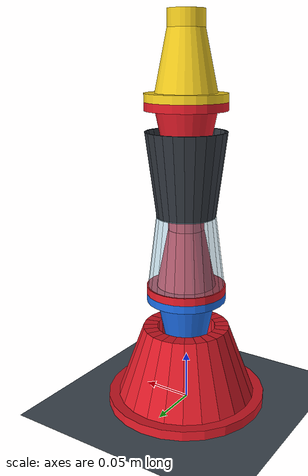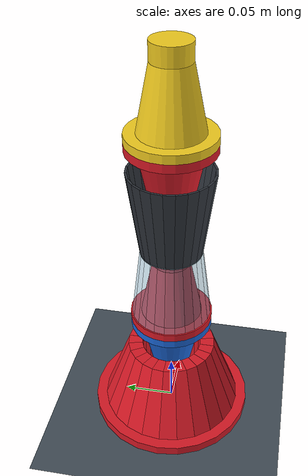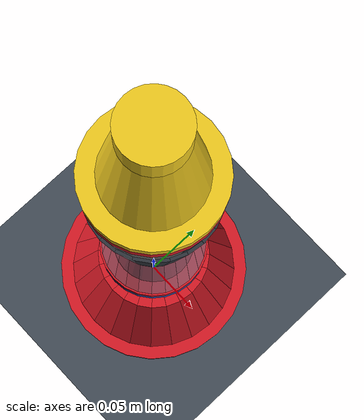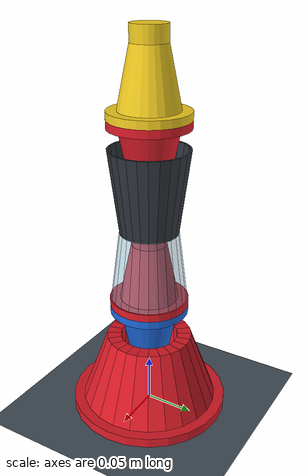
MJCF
<mujoco model="override_contact_fixture"><compiler angle="radian" /><option timestep=".002" gravity="0 0 -9.81" integrator="implicitfast" cone="elliptic" iterations="80" /><default><geom friction=".65 .002 .0001" solref=".01 1" /></default><visual><global offwidth="1200" offheight="900" /><headlight ambient=".5 .5 .5" diffuse=".7 .7 .7" /></visual><asset><mesh name="goal_wall_0" vertex="0.07125 0.0 0.01 0.06882221512309611 0.018440856963554603 0.01 0.03005 0.0 0.01 0.029026071079986504 0.007777512305330748 0.01 0.0444 0.0 0.0825 0.04288710668723463 0.011491565602551922 0.0825 0.03005 0.0 0.0825 0.029026071079986504 0.007777512305330748 0.0825" /><mesh name="goal_wall_1" vertex="0.06882221512309611 0.018440856963554603 0.01 0.06170431001964125 0.03562499999999999 0.01 0.029026071079986504 0.007777512305330748 0.01 0.026024063383722384 0.015024999999999998 0.01 0.04288710668723463 0.011491565602551922 0.0825 0.03845152792802908 0.022199999999999998 0.0825 0.029026071079986504 0.007777512305330748 0.0825 0.026024063383722384 0.015024999999999998 0.0825" /><mesh name="goal_wall_2" vertex="0.06170431001964125 0.03562499999999999 0.01 0.05038135815954151 0.0503813581595415 0.01 0.026024063383722384 0.015024999999999998 0.01 0.021248558774655753 0.02124855877465575 0.01 0.03845152792802908 0.022199999999999998 0.0825 0.03139554108468271 0.03139554108468271 0.0825 0.026024063383722384 0.015024999999999998 0.0825 0.021248558774655753 0.02124855877465575 0.0825" /><mesh name="goal_wall_3" vertex="0.05038135815954151 0.0503813581595415 0.01 0.035625000000000004 0.061704310019641245 0.01 0.021248558774655753 0.02124855877465575 0.01 0.015025000000000004 0.02602406338372238 0.01 0.03139554108468271 0.03139554108468271 0.0825 0.022200000000000004 0.038451527928029076 0.0825 0.021248558774655753 0.02124855877465575 0.0825 0.015025000000000004 0.02602406338372238 0.0825" /><mesh name="goal_wall_4" vertex="0.035625000000000004 0.061704310019641245 0.01 0.018440856963554603 0.06882221512309611 0.01 0.015025000000000004 0.02602406338372238 0.01 0.007777512305330748 0.029026071079986504 0.01 0.022200000000000004 0.038451527928029076 0.0825 0.011491565602551922 0.04288710668723463 0.0825 0.015025000000000004 0.02602406338372238 0.0825 0.007777512305330748 0.029026071079986504 0.0825" /><mesh name="goal_wall_5" vertex="0.018440856963554603 0.06882221512309611 0.01 4.362804221962445e-18 0.07125 0.01 0.007777512305330748 0.029026071079986504 0.01 1.8400318157188982e-18 0.03005 0.01 0.011491565602551922 0.04288710668723463 0.0825 2.718715894107124e-18 0.0444 0.0825 0.007777512305330748 0.029026071079986504 0.0825 1.8400318157188982e-18 0.03005 0.0825" /><mesh name="goal_wall_6" vertex="4.362804221962445e-18 0.07125 0.01 -0.018440856963554592 0.06882221512309611 0.01 1.8400318157188982e-18 0.03005 0.01 -0.007777512305330745 0.029026071079986504 0.01 2.718715894107124e-18 0.0444 0.0825 -0.011491565602551917 0.04288710668723463 0.0825 1.8400318157188982e-18 0.03005 0.0825 -0.007777512305330745 0.029026071079986504 0.0825" /><mesh name="goal_wall_7" vertex="-0.018440856963554592 0.06882221512309611 0.01 -0.03562499999999998 0.06170431001964125 0.01 -0.007777512305330745 0.029026071079986504 0.01 -0.015024999999999995 0.026024063383722384 0.01 -0.011491565602551917 0.04288710668723463 0.0825 -0.022199999999999994 0.03845152792802908 0.0825 -0.007777512305330745 0.029026071079986504 0.0825 -0.015024999999999995 0.026024063383722384 0.0825" /><mesh name="goal_wall_8" vertex="-0.03562499999999998 0.06170431001964125 0.01 -0.0503813581595415 0.05038135815954151 0.01 -0.015024999999999995 0.026024063383722384 0.01 -0.02124855877465575 0.021248558774655753 0.01 -0.022199999999999994 0.03845152792802908 0.0825 -0.03139554108468271 0.03139554108468271 0.0825 -0.015024999999999995 0.026024063383722384 0.0825 -0.02124855877465575 0.021248558774655753 0.0825" /><mesh name="goal_wall_9" vertex="-0.0503813581595415 0.05038135815954151 0.01 -0.06170431001964125 0.03562499999999999 0.01 -0.02124855877465575 0.021248558774655753 0.01 -0.026024063383722384 0.015024999999999998 0.01 -0.03139554108468271 0.03139554108468271 0.0825 -0.03845152792802908 0.022199999999999998 0.0825 -0.02124855877465575 0.021248558774655753 0.0825 -0.026024063383722384 0.015024999999999998 0.0825" /><mesh name="goal_wall_10" vertex="-0.06170431001964125 0.03562499999999999 0.01 -0.06882221512309611 0.01844085696355462 0.01 -0.026024063383722384 0.015024999999999998 0.01 -0.0290260710799865 0.007777512305330757 0.01 -0.03845152792802908 0.022199999999999998 0.0825 -0.04288710668723463 0.011491565602551934 0.0825 -0.026024063383722384 0.015024999999999998 0.0825 -0.0290260710799865 0.007777512305330757 0.0825" /><mesh name="goal_wall_11" vertex="-0.06882221512309611 0.01844085696355462 0.01 -0.07125 8.72560844392489e-18 0.01 -0.0290260710799865 0.007777512305330757 0.01 -0.03005 3.6800636314377964e-18 0.01 -0.04288710668723463 0.011491565602551934 0.0825 -0.0444 5.437431788214248e-18 0.0825 -0.0290260710799865 0.007777512305330757 0.0825 -0.03005 3.6800636314377964e-18 0.0825" /><mesh name="goal_wall_12" vertex="-0.07125 8.72560844392489e-18 0.01 -0.06882221512309611 -0.018440856963554606 0.01 -0.03005 3.6800636314377964e-18 0.01 -0.029026071079986504 -0.00777751230533075 0.01 -0.0444 5.437431788214248e-18 0.0825 -0.04288710668723463 -0.011491565602551924 0.0825 -0.03005 3.6800636314377964e-18 0.0825 -0.029026071079986504 -0.00777751230533075 0.0825" /><mesh name="goal_wall_13" vertex="-0.06882221512309611 -0.018440856963554606 0.01 -0.06170431001964126 -0.03562499999999998 0.01 -0.029026071079986504 -0.00777751230533075 0.01 -0.026024063383722387 -0.015024999999999993 0.01 -0.04288710668723463 -0.011491565602551924 0.0825 -0.03845152792802908 -0.02219999999999999 0.0825 -0.029026071079986504 -0.00777751230533075 0.0825 -0.026024063383722387 -0.015024999999999993 0.0825" /><mesh name="goal_wall_14" vertex="-0.06170431001964126 -0.03562499999999998 0.01 -0.050381358159541534 -0.05038135815954148 0.01 -0.026024063383722387 -0.015024999999999993 0.01 -0.021248558774655764 -0.021248558774655743 0.01 -0.03845152792802908 -0.02219999999999999 0.0825 -0.031395541084682725 -0.03139554108468269 0.0825 -0.026024063383722387 -0.015024999999999993 0.0825 -0.021248558774655764 -0.021248558774655743 0.0825" /><mesh name="goal_wall_15" vertex="-0.050381358159541534 -0.05038135815954148 0.01 -0.03562500000000003 -0.06170431001964123 0.01 -0.021248558774655764 -0.021248558774655743 0.01 -0.015025000000000014 -0.026024063383722373 0.01 -0.031395541084682725 -0.03139554108468269 0.0825 -0.022200000000000022 -0.03845152792802906 0.0825 -0.021248558774655764 -0.021248558774655743 0.0825 -0.015025000000000014 -0.026024063383722373 0.0825" /><mesh name="goal_wall_16" vertex="-0.03562500000000003 -0.06170431001964123 0.01 -0.018440856963554592 -0.06882221512309611 0.01 -0.015025000000000014 -0.026024063383722373 0.01 -0.007777512305330745 -0.029026071079986504 0.01 -0.022200000000000022 -0.03845152792802906 0.0825 -0.011491565602551917 -0.04288710668723463 0.0825 -0.015025000000000014 -0.026024063383722373 0.0825 -0.007777512305330745 -0.029026071079986504 0.0825" /><mesh name="goal_wall_17" vertex="-0.018440856963554592 -0.06882221512309611 0.01 -1.3088412665887336e-17 -0.07125 0.01 -0.007777512305330745 -0.029026071079986504 0.01 -5.520095447156694e-18 -0.03005 0.01 -0.011491565602551917 -0.04288710668723463 0.0825 -8.156147682321372e-18 -0.0444 0.0825 -0.007777512305330745 -0.029026071079986504 0.0825 -5.520095447156694e-18 -0.03005 0.0825" /><mesh name="goal_wall_18" vertex="-1.3088412665887336e-17 -0.07125 0.01 0.018440856963554568 -0.06882221512309612 0.01 -5.520095447156694e-18 -0.03005 0.01 0.007777512305330735 -0.029026071079986508 0.01 -8.156147682321372e-18 -0.0444 0.0825 0.011491565602551901 -0.04288710668723464 0.0825 -5.520095447156694e-18 -0.03005 0.0825 0.007777512305330735 -0.029026071079986508 0.0825" /><mesh name="goal_wall_19" vertex="0.018440856963554568 -0.06882221512309612 0.01 0.035625000000000004 -0.061704310019641245 0.01 0.007777512305330735 -0.029026071079986508 0.01 0.015025000000000004 -0.02602406338372238 0.01 0.011491565602551901 -0.04288710668723464 0.0825 0.022200000000000004 -0.038451527928029076 0.0825 0.007777512305330735 -0.029026071079986508 0.0825 0.015025000000000004 -0.02602406338372238 0.0825" /><mesh name="goal_wall_20" vertex="0.035625000000000004 -0.061704310019641245 0.01 0.05038135815954149 -0.05038135815954152 0.01 0.015025000000000004 -0.02602406338372238 0.01 0.021248558774655747 -0.021248558774655757 0.01 0.022200000000000004 -0.038451527928029076 0.0825 0.031395541084682704 -0.03139554108468272 0.0825 0.015025000000000004 -0.02602406338372238 0.0825 0.021248558774655747 -0.021248558774655757 0.0825" /><mesh name="goal_wall_21" vertex="0.05038135815954149 -0.05038135815954152 0.01 0.06170431001964123 -0.03562500000000003 0.01 0.021248558774655747 -0.021248558774655757 0.01 0.026024063383722373 -0.015025000000000014 0.01 0.031395541084682704 -0.03139554108468272 0.0825 0.03845152792802906 -0.022200000000000022 0.0825 0.021248558774655747 -0.021248558774655757 0.0825 0.026024063383722373 -0.015025000000000014 0.0825" /><mesh name="goal_wall_22" vertex="0.06170431001964123 -0.03562500000000003 0.01 0.0688222151230961 -0.01844085696355466 0.01 0.026024063383722373 -0.015025000000000014 0.01 0.029026071079986497 -0.007777512305330773 0.01 0.03845152792802906 -0.022200000000000022 0.0825 0.042887106687234625 -0.011491565602551958 0.0825 0.026024063383722373 -0.015025000000000014 0.0825 0.029026071079986497 -0.007777512305330773 0.0825" /><mesh name="goal_wall_23" vertex="0.0688222151230961 -0.01844085696355466 0.01 0.07125 -1.745121688784978e-17 0.01 0.029026071079986497 -0.007777512305330773 0.01 0.03005 -7.360127262875593e-18 0.01 0.042887106687234625 -0.011491565602551958 0.0825 0.0444 -1.0874863576428497e-17 0.0825 0.029026071079986497 -0.007777512305330773 0.0825 0.03005 -7.360127262875593e-18 0.0825" /><mesh name="pin_taper_1" vertex="0.0298 0.0 0.008 0.028784589623414236 0.007712807544055118 0.008 0.025807557032776273 0.014899999999999998 0.008 0.021071782079359117 0.021071782079359114 0.008 0.014900000000000004 0.02580755703277627 0.008 0.007712807544055125 0.028784589623414233 0.008 1.8247237307295563e-18 0.0298 0.008 -0.007712807544055115 0.028784589623414236 0.008 -0.014899999999999995 0.025807557032776273 0.008 -0.021071782079359114 0.021071782079359117 0.008 -0.025807557032776266 0.01490000000000001 0.008 -0.028784589623414233 0.007712807544055126 0.008 -0.0298 3.649447461459113e-18 0.008 -0.02878458962341424 -0.007712807544055107 0.008 -0.025807557032776277 -0.014899999999999993 0.008 -0.021071782079359128 -0.021071782079359103 0.008 -0.014900000000000014 -0.025807557032776263 0.008 -0.0077128075440551416 -0.02878458962341423 0.008 -5.4741711921886686e-18 -0.0298 0.008 0.007712807544055105 -0.02878458962341424 0.008 0.014899999999999981 -0.025807557032776283 0.008 0.02107178207935911 -0.02107178207935912 0.008 0.025807557032776263 -0.014900000000000014 0.008 0.02878458962341423 -0.007712807544055143 0.008 0.0178 0.0 0.066313 0.017193479707945415 0.0046069790028248694 0.066313 0.01541525218736301 0.008899999999999998 0.066313 0.012586500705120547 0.012586500705120544 0.066313 0.008900000000000002 0.015415252187363006 0.066313 0.004606979002824873 0.017193479707945415 0.066313 1.0899356512411443e-18 0.0178 0.066313 -0.004606979002824867 0.017193479707945415 0.066313 -0.008899999999999996 0.01541525218736301 0.066313 -0.012586500705120544 0.012586500705120547 0.066313 -0.015415252187363004 0.008900000000000005 0.066313 -0.017193479707945415 0.004606979002824874 0.066313 -0.0178 2.1798713024822886e-18 0.066313 -0.01719347970794542 -0.0046069790028248625 0.066313 -0.015415252187363011 -0.008899999999999996 0.066313 -0.012586500705120553 -0.012586500705120539 0.066313 -0.008900000000000009 -0.015415252187363003 0.066313 -0.004606979002824883 -0.01719347970794541 0.066313 -3.2698069537234327e-18 -0.0178 0.066313 0.004606979002824862 -0.01719347970794542 0.066313 0.008899999999999988 -0.015415252187363015 0.066313 0.012586500705120542 -0.01258650070512055 0.066313 0.015415252187363003 -0.008900000000000009 0.066313 0.01719347970794541 -0.004606979002824884 0.066313" /><mesh name="pin_taper_-1" vertex="0.0178 0.0 -0.066313 0.017193479707945415 0.0046069790028248694 -0.066313 0.01541525218736301 0.008899999999999998 -0.066313 0.012586500705120547 0.012586500705120544 -0.066313 0.008900000000000002 0.015415252187363006 -0.066313 0.004606979002824873 0.017193479707945415 -0.066313 1.0899356512411443e-18 0.0178 -0.066313 -0.004606979002824867 0.017193479707945415 -0.066313 -0.008899999999999996 0.01541525218736301 -0.066313 -0.012586500705120544 0.012586500705120547 -0.066313 -0.015415252187363004 0.008900000000000005 -0.066313 -0.017193479707945415 0.004606979002824874 -0.066313 -0.0178 2.1798713024822886e-18 -0.066313 -0.01719347970794542 -0.0046069790028248625 -0.066313 -0.015415252187363011 -0.008899999999999996 -0.066313 -0.012586500705120553 -0.012586500705120539 -0.066313 -0.008900000000000009 -0.015415252187363003 -0.066313 -0.004606979002824883 -0.01719347970794541 -0.066313 -3.2698069537234327e-18 -0.0178 -0.066313 0.004606979002824862 -0.01719347970794542 -0.066313 0.008899999999999988 -0.015415252187363015 -0.066313 0.012586500705120542 -0.01258650070512055 -0.066313 0.015415252187363003 -0.008900000000000009 -0.066313 0.01719347970794541 -0.004606979002824884 -0.066313 0.0298 0.0 -0.008 0.028784589623414236 0.007712807544055118 -0.008 0.025807557032776273 0.014899999999999998 -0.008 0.021071782079359117 0.021071782079359114 -0.008 0.014900000000000004 0.02580755703277627 -0.008 0.007712807544055125 0.028784589623414233 -0.008 1.8247237307295563e-18 0.0298 -0.008 -0.007712807544055115 0.028784589623414236 -0.008 -0.014899999999999995 0.025807557032776273 -0.008 -0.021071782079359114 0.021071782079359117 -0.008 -0.025807557032776266 0.01490000000000001 -0.008 -0.028784589623414233 0.007712807544055126 -0.008 -0.0298 3.649447461459113e-18 -0.008 -0.02878458962341424 -0.007712807544055107 -0.008 -0.025807557032776277 -0.014899999999999993 -0.008 -0.021071782079359128 -0.021071782079359103 -0.008 -0.014900000000000014 -0.025807557032776263 -0.008 -0.0077128075440551416 -0.02878458962341423 -0.008 -5.4741711921886686e-18 -0.0298 -0.008 0.007712807544055105 -0.02878458962341424 -0.008 0.014899999999999981 -0.025807557032776283 -0.008 0.02107178207935911 -0.02107178207935912 -0.008 0.025807557032776263 -0.014900000000000014 -0.008 0.02878458962341423 -0.007712807544055143 -0.008" /><mesh name="cup_lower_0" vertex="0.0401 0.0 -0.08225 0.03873362563419164 0.010378643708611081 -0.08225 0.038099999999999995 0.0 -0.08225 0.036801773981613495 0.009861005618406039 -0.08225 0.0295 0.0 0 0.028494811875527513 0.007635161830524362 0 0.027499999999999997 0.0 0 0.026562960222949374 0.0071175237403193195 0" /><mesh name="cup_lower_1" vertex="0.03873362563419164 0.010378643708611081 -0.08225 0.03472761869175599 0.020049999999999995 -0.08225 0.036801773981613495 0.009861005618406039 -0.08225 0.03299556788418711 0.019049999999999994 -0.08225 0.028494811875527513 0.007635161830524362 0 0.02554774941164094 0.014749999999999997 0 0.026562960222949374 0.0071175237403193195 0 0.023815698604072063 0.013749999999999997 0" /><mesh name="cup_lower_2" vertex="0.03472761869175599 0.020049999999999995 -0.08225 0.028354981925580554 0.02835498192558055 -0.08225 0.03299556788418711 0.019049999999999994 -0.08225 0.026940768363207458 0.026940768363207454 -0.08225 0.02554774941164094 0.014749999999999997 0 0.02085965004500315 0.020859650045003147 0 0.023815698604072063 0.013749999999999997 0 0.019445436482630057 0.019445436482630054 0" /><mesh name="cup_lower_3" vertex="0.028354981925580554 0.02835498192558055 -0.08225 0.020050000000000002 0.03472761869175599 -0.08225 0.026940768363207458 0.026940768363207454 -0.08225 0.01905 0.03299556788418711 -0.08225 0.02085965004500315 0.020859650045003147 0 0.014750000000000003 0.025547749411640938 0 0.019445436482630057 0.019445436482630054 0 0.013750000000000002 0.02381569860407206 0" /><mesh name="cup_lower_4" vertex="0.020050000000000002 0.03472761869175599 -0.08225 0.010378643708611081 0.03873362563419164 -0.08225 0.01905 0.03299556788418711 -0.08225 0.009861005618406039 0.036801773981613495 -0.08225 0.014750000000000003 0.025547749411640938 0 0.007635161830524362 0.028494811875527513 0 0.013750000000000002 0.02381569860407206 0 0.0071175237403193195 0.026562960222949374 0" /><mesh name="cup_lower_5" vertex="0.010378643708611081 0.03873362563419164 -0.08225 2.455416832290443e-18 0.0401 -0.08225 0.009861005618406039 0.036801773981613495 -0.08225 2.3329521523757074e-18 0.038099999999999995 -0.08225 0.007635161830524362 0.028494811875527513 0 1.806354028742346e-18 0.0295 0 0.0071175237403193195 0.026562960222949374 0 1.6838893488276104e-18 0.027499999999999997 0" /><mesh name="cup_lower_6" vertex="2.455416832290443e-18 0.0401 -0.08225 -0.010378643708611076 0.03873362563419164 -0.08225 2.3329521523757074e-18 0.038099999999999995 -0.08225 -0.009861005618406034 0.036801773981613495 -0.08225 1.806354028742346e-18 0.0295 0 -0.007635161830524358 0.028494811875527513 0 1.6838893488276104e-18 0.027499999999999997 0 -0.007117523740319316 0.026562960222949374 0" /><mesh name="cup_lower_7" vertex="-0.010378643708611076 0.03873362563419164 -0.08225 -0.02004999999999999 0.03472761869175599 -0.08225 -0.009861005618406034 0.036801773981613495 -0.08225 -0.01904999999999999 0.03299556788418711 -0.08225 -0.007635161830524358 0.028494811875527513 0 -0.014749999999999994 0.02554774941164094 0 -0.007117523740319316 0.026562960222949374 0 -0.013749999999999993 0.023815698604072063 0" /><mesh name="cup_lower_8" vertex="-0.02004999999999999 0.03472761869175599 -0.08225 -0.02835498192558055 0.028354981925580554 -0.08225 -0.01904999999999999 0.03299556788418711 -0.08225 -0.026940768363207454 0.026940768363207458 -0.08225 -0.014749999999999994 0.02554774941164094 0 -0.020859650045003147 0.02085965004500315 0 -0.013749999999999993 0.023815698604072063 0 -0.019445436482630054 0.019445436482630057 0" /><mesh name="cup_lower_9" vertex="-0.02835498192558055 0.028354981925580554 -0.08225 -0.03472761869175599 0.020049999999999995 -0.08225 -0.026940768363207454 0.026940768363207458 -0.08225 -0.03299556788418711 0.019049999999999994 -0.08225 -0.020859650045003147 0.02085965004500315 0 -0.02554774941164094 0.014749999999999997 0 -0.019445436482630054 0.019445436482630057 0 -0.023815698604072063 0.013749999999999997 0" /><mesh name="cup_lower_10" vertex="-0.03472761869175599 0.020049999999999995 -0.08225 -0.03873362563419163 0.010378643708611092 -0.08225 -0.03299556788418711 0.019049999999999994 -0.08225 -0.036801773981613495 0.00986100561840605 -0.08225 -0.02554774941164094 0.014749999999999997 0 -0.02849481187552751 0.0076351618305243694 0 -0.023815698604072063 0.013749999999999997 0 -0.02656296022294937 0.007117523740319327 0" /><mesh name="cup_lower_11" vertex="-0.03873362563419163 0.010378643708611092 -0.08225 -0.0401 4.910833664580886e-18 -0.08225 -0.036801773981613495 0.00986100561840605 -0.08225 -0.038099999999999995 4.665904304751415e-18 -0.08225 -0.02849481187552751 0.0076351618305243694 0 -0.0295 3.612708057484692e-18 0 -0.02656296022294937 0.007117523740319327 0 -0.027499999999999997 3.3677786976552208e-18 0" /><mesh name="cup_lower_12" vertex="-0.0401 4.910833664580886e-18 -0.08225 -0.03873362563419164 -0.010378643708611083 -0.08225 -0.038099999999999995 4.665904304751415e-18 -0.08225 -0.036801773981613495 -0.00986100561840604 -0.08225 -0.0295 3.612708057484692e-18 0 -0.028494811875527513 -0.007635161830524363 0 -0.027499999999999997 3.3677786976552208e-18 0 -0.026562960222949374 -0.007117523740319321 0" /><mesh name="cup_lower_13" vertex="-0.03873362563419164 -0.010378643708611083 -0.08225 -0.034727618691755995 -0.020049999999999988 -0.08225 -0.036801773981613495 -0.00986100561840604 -0.08225 -0.032995567884187116 -0.01904999999999999 -0.08225 -0.028494811875527513 -0.007635161830524363 0 -0.025547749411640945 -0.014749999999999992 0 -0.026562960222949374 -0.007117523740319321 0 -0.023815698604072063 -0.013749999999999991 0" /><mesh name="cup_lower_14" vertex="-0.034727618691755995 -0.020049999999999988 -0.08225 -0.02835498192558057 -0.028354981925580537 -0.08225 -0.032995567884187116 -0.01904999999999999 -0.08225 -0.02694076836320747 -0.026940768363207444 -0.08225 -0.025547749411640945 -0.014749999999999992 0 -0.02085965004500316 -0.02085965004500314 0 -0.023815698604072063 -0.013749999999999991 0 -0.019445436482630064 -0.019445436482630044 0" /><mesh name="cup_lower_15" vertex="-0.02835498192558057 -0.028354981925580537 -0.08225 -0.020050000000000016 -0.034727618691755974 -0.08225 -0.02694076836320747 -0.026940768363207444 -0.08225 -0.019050000000000015 -0.032995567884187095 -0.08225 -0.02085965004500316 -0.02085965004500314 0 -0.014750000000000013 -0.02554774941164093 0 -0.019445436482630064 -0.019445436482630044 0 -0.01375000000000001 -0.023815698604072053 0" /><mesh name="cup_lower_16" vertex="-0.020050000000000016 -0.034727618691755974 -0.08225 -0.010378643708611076 -0.03873362563419164 -0.08225 -0.019050000000000015 -0.032995567884187095 -0.08225 -0.009861005618406034 -0.036801773981613495 -0.08225 -0.014750000000000013 -0.02554774941164093 0 -0.007635161830524358 -0.028494811875527513 0 -0.01375000000000001 -0.023815698604072053 0 -0.007117523740319316 -0.026562960222949374 0" /><mesh name="cup_lower_17" vertex="-0.010378643708611076 -0.03873362563419164 -0.08225 -7.366250496871328e-18 -0.0401 -0.08225 -0.009861005618406034 -0.036801773981613495 -0.08225 -6.998856457127123e-18 -0.038099999999999995 -0.08225 -0.007635161830524358 -0.028494811875527513 0 -5.4190620862270375e-18 -0.0295 0 -0.007117523740319316 -0.026562960222949374 0 -5.051668046482831e-18 -0.027499999999999997 0" /><mesh name="cup_lower_18" vertex="-7.366250496871328e-18 -0.0401 -0.08225 0.010378643708611064 -0.03873362563419164 -0.08225 -6.998856457127123e-18 -0.038099999999999995 -0.08225 0.009861005618406022 -0.0368017739816135 -0.08225 -5.4190620862270375e-18 -0.0295 0 0.007635161830524349 -0.028494811875527517 0 -5.051668046482831e-18 -0.027499999999999997 0 0.007117523740319307 -0.026562960222949378 0" /><mesh name="cup_lower_19" vertex="0.010378643708611064 -0.03873362563419164 -0.08225 0.020050000000000002 -0.03472761869175599 -0.08225 0.009861005618406022 -0.0368017739816135 -0.08225 0.01905 -0.03299556788418711 -0.08225 0.007635161830524349 -0.028494811875527517 0 0.014750000000000003 -0.025547749411640938 0 0.007117523740319307 -0.026562960222949378 0 0.013750000000000002 -0.02381569860407206 0" /><mesh name="cup_lower_20" vertex="0.020050000000000002 -0.03472761869175599 -0.08225 0.028354981925580548 -0.02835498192558056 -0.08225 0.01905 -0.03299556788418711 -0.08225 0.02694076836320745 -0.026940768363207464 -0.08225 0.014750000000000003 -0.025547749411640938 0 0.020859650045003147 -0.020859650045003154 0 0.013750000000000002 -0.02381569860407206 0 0.01944543648263005 -0.019445436482630057 0" /><mesh name="cup_lower_21" vertex="0.028354981925580548 -0.02835498192558056 -0.08225 0.034727618691755974 -0.020050000000000016 -0.08225 0.02694076836320745 -0.026940768363207464 -0.08225 0.032995567884187095 -0.019050000000000015 -0.08225 0.020859650045003147 -0.020859650045003154 0 0.02554774941164093 -0.014750000000000013 0 0.01944543648263005 -0.019445436482630057 0 0.023815698604072053 -0.01375000000000001 0" /><mesh name="cup_lower_22" vertex="0.034727618691755974 -0.020050000000000016 -0.08225 0.03873362563419163 -0.010378643708611114 -0.08225 0.032995567884187095 -0.019050000000000015 -0.08225 0.03680177398161349 -0.00986100561840607 -0.08225 0.02554774941164093 -0.014750000000000013 0 0.028494811875527506 -0.007635161830524386 0 0.023815698604072053 -0.01375000000000001 0 0.02656296022294937 -0.007117523740319342 0" /><mesh name="cup_lower_23" vertex="0.03873362563419163 -0.010378643708611114 -0.08225 0.0401 -9.821667329161771e-18 -0.08225 0.03680177398161349 -0.00986100561840607 -0.08225 0.038099999999999995 -9.33180860950283e-18 -0.08225 0.028494811875527506 -0.007635161830524386 0 0.0295 -7.225416114969383e-18 0 0.02656296022294937 -0.007117523740319342 0 0.027499999999999997 -6.7355573953104416e-18 0" /><mesh name="cup_upper_0" vertex="0.0295 0.0 0 0.028494811875527513 0.007635161830524362 0 0.027499999999999997 0.0 0 0.026562960222949374 0.0071175237403193195 0 0.0401 0.0 0.08225 0.03873362563419164 0.010378643708611081 0.08225 0.038099999999999995 0.0 0.08225 0.036801773981613495 0.009861005618406039 0.08225" /><mesh name="cup_upper_1" vertex="0.028494811875527513 0.007635161830524362 0 0.02554774941164094 0.014749999999999997 0 0.026562960222949374 0.0071175237403193195 0 0.023815698604072063 0.013749999999999997 0 0.03873362563419164 0.010378643708611081 0.08225 0.03472761869175599 0.020049999999999995 0.08225 0.036801773981613495 0.009861005618406039 0.08225 0.03299556788418711 0.019049999999999994 0.08225" /><mesh name="cup_upper_2" vertex="0.02554774941164094 0.014749999999999997 0 0.02085965004500315 0.020859650045003147 0 0.023815698604072063 0.013749999999999997 0 0.019445436482630057 0.019445436482630054 0 0.03472761869175599 0.020049999999999995 0.08225 0.028354981925580554 0.02835498192558055 0.08225 0.03299556788418711 0.019049999999999994 0.08225 0.026940768363207458 0.026940768363207454 0.08225" /><mesh name="cup_upper_3" vertex="0.02085965004500315 0.020859650045003147 0 0.014750000000000003 0.025547749411640938 0 0.019445436482630057 0.019445436482630054 0 0.013750000000000002 0.02381569860407206 0 0.028354981925580554 0.02835498192558055 0.08225 0.020050000000000002 0.03472761869175599 0.08225 0.026940768363207458 0.026940768363207454 0.08225 0.01905 0.03299556788418711 0.08225" /><mesh name="cup_upper_4" vertex="0.014750000000000003 0.025547749411640938 0 0.007635161830524362 0.028494811875527513 0 0.013750000000000002 0.02381569860407206 0 0.0071175237403193195 0.026562960222949374 0 0.020050000000000002 0.03472761869175599 0.08225 0.010378643708611081 0.03873362563419164 0.08225 0.01905 0.03299556788418711 0.08225 0.009861005618406039 0.036801773981613495 0.08225" /><mesh name="cup_upper_5" vertex="0.007635161830524362 0.028494811875527513 0 1.806354028742346e-18 0.0295 0 0.0071175237403193195 0.026562960222949374 0 1.6838893488276104e-18 0.027499999999999997 0 0.010378643708611081 0.03873362563419164 0.08225 2.455416832290443e-18 0.0401 0.08225 0.009861005618406039 0.036801773981613495 0.08225 2.3329521523757074e-18 0.038099999999999995 0.08225" /><mesh name="cup_upper_6" vertex="1.806354028742346e-18 0.0295 0 -0.007635161830524358 0.028494811875527513 0 1.6838893488276104e-18 0.027499999999999997 0 -0.007117523740319316 0.026562960222949374 0 2.455416832290443e-18 0.0401 0.08225 -0.010378643708611076 0.03873362563419164 0.08225 2.3329521523757074e-18 0.038099999999999995 0.08225 -0.009861005618406034 0.036801773981613495 0.08225" /><mesh name="cup_upper_7" vertex="-0.007635161830524358 0.028494811875527513 0 -0.014749999999999994 0.02554774941164094 0 -0.007117523740319316 0.026562960222949374 0 -0.013749999999999993 0.023815698604072063 0 -0.010378643708611076 0.03873362563419164 0.08225 -0.02004999999999999 0.03472761869175599 0.08225 -0.009861005618406034 0.036801773981613495 0.08225 -0.01904999999999999 0.03299556788418711 0.08225" /><mesh name="cup_upper_8" vertex="-0.014749999999999994 0.02554774941164094 0 -0.020859650045003147 0.02085965004500315 0 -0.013749999999999993 0.023815698604072063 0 -0.019445436482630054 0.019445436482630057 0 -0.02004999999999999 0.03472761869175599 0.08225 -0.02835498192558055 0.028354981925580554 0.08225 -0.01904999999999999 0.03299556788418711 0.08225 -0.026940768363207454 0.026940768363207458 0.08225" /><mesh name="cup_upper_9" vertex="-0.020859650045003147 0.02085965004500315 0 -0.02554774941164094 0.014749999999999997 0 -0.019445436482630054 0.019445436482630057 0 -0.023815698604072063 0.013749999999999997 0 -0.02835498192558055 0.028354981925580554 0.08225 -0.03472761869175599 0.020049999999999995 0.08225 -0.026940768363207454 0.026940768363207458 0.08225 -0.03299556788418711 0.019049999999999994 0.08225" /><mesh name="cup_upper_10" vertex="-0.02554774941164094 0.014749999999999997 0 -0.02849481187552751 0.0076351618305243694 0 -0.023815698604072063 0.013749999999999997 0 -0.02656296022294937 0.007117523740319327 0 -0.03472761869175599 0.020049999999999995 0.08225 -0.03873362563419163 0.010378643708611092 0.08225 -0.03299556788418711 0.019049999999999994 0.08225 -0.036801773981613495 0.00986100561840605 0.08225" /><mesh name="cup_upper_11" vertex="-0.02849481187552751 0.0076351618305243694 0 -0.0295 3.612708057484692e-18 0 -0.02656296022294937 0.007117523740319327 0 -0.027499999999999997 3.3677786976552208e-18 0 -0.03873362563419163 0.010378643708611092 0.08225 -0.0401 4.910833664580886e-18 0.08225 -0.036801773981613495 0.00986100561840605 0.08225 -0.038099999999999995 4.665904304751415e-18 0.08225" /><mesh name="cup_upper_12" vertex="-0.0295 3.612708057484692e-18 0 -0.028494811875527513 -0.007635161830524363 0 -0.027499999999999997 3.3677786976552208e-18 0 -0.026562960222949374 -0.007117523740319321 0 -0.0401 4.910833664580886e-18 0.08225 -0.03873362563419164 -0.010378643708611083 0.08225 -0.038099999999999995 4.665904304751415e-18 0.08225 -0.036801773981613495 -0.00986100561840604 0.08225" /><mesh name="cup_upper_13" vertex="-0.028494811875527513 -0.007635161830524363 0 -0.025547749411640945 -0.014749999999999992 0 -0.026562960222949374 -0.007117523740319321 0 -0.023815698604072063 -0.013749999999999991 0 -0.03873362563419164 -0.010378643708611083 0.08225 -0.034727618691755995 -0.020049999999999988 0.08225 -0.036801773981613495 -0.00986100561840604 0.08225 -0.032995567884187116 -0.01904999999999999 0.08225" /><mesh name="cup_upper_14" vertex="-0.025547749411640945 -0.014749999999999992 0 -0.02085965004500316 -0.02085965004500314 0 -0.023815698604072063 -0.013749999999999991 0 -0.019445436482630064 -0.019445436482630044 0 -0.034727618691755995 -0.020049999999999988 0.08225 -0.02835498192558057 -0.028354981925580537 0.08225 -0.032995567884187116 -0.01904999999999999 0.08225 -0.02694076836320747 -0.026940768363207444 0.08225" /><mesh name="cup_upper_15" vertex="-0.02085965004500316 -0.02085965004500314 0 -0.014750000000000013 -0.02554774941164093 0 -0.019445436482630064 -0.019445436482630044 0 -0.01375000000000001 -0.023815698604072053 0 -0.02835498192558057 -0.028354981925580537 0.08225 -0.020050000000000016 -0.034727618691755974 0.08225 -0.02694076836320747 -0.026940768363207444 0.08225 -0.019050000000000015 -0.032995567884187095 0.08225" /><mesh name="cup_upper_16" vertex="-0.014750000000000013 -0.02554774941164093 0 -0.007635161830524358 -0.028494811875527513 0 -0.01375000000000001 -0.023815698604072053 0 -0.007117523740319316 -0.026562960222949374 0 -0.020050000000000016 -0.034727618691755974 0.08225 -0.010378643708611076 -0.03873362563419164 0.08225 -0.019050000000000015 -0.032995567884187095 0.08225 -0.009861005618406034 -0.036801773981613495 0.08225" /><mesh name="cup_upper_17" vertex="-0.007635161830524358 -0.028494811875527513 0 -5.4190620862270375e-18 -0.0295 0 -0.007117523740319316 -0.026562960222949374 0 -5.051668046482831e-18 -0.027499999999999997 0 -0.010378643708611076 -0.03873362563419164 0.08225 -7.366250496871328e-18 -0.0401 0.08225 -0.009861005618406034 -0.036801773981613495 0.08225 -6.998856457127123e-18 -0.038099999999999995 0.08225" /><mesh name="cup_upper_18" vertex="-5.4190620862270375e-18 -0.0295 0 0.007635161830524349 -0.028494811875527517 0 -5.051668046482831e-18 -0.027499999999999997 0 0.007117523740319307 -0.026562960222949378 0 -7.366250496871328e-18 -0.0401 0.08225 0.010378643708611064 -0.03873362563419164 0.08225 -6.998856457127123e-18 -0.038099999999999995 0.08225 0.009861005618406022 -0.0368017739816135 0.08225" /><mesh name="cup_upper_19" vertex="0.007635161830524349 -0.028494811875527517 0 0.014750000000000003 -0.025547749411640938 0 0.007117523740319307 -0.026562960222949378 0 0.013750000000000002 -0.02381569860407206 0 0.010378643708611064 -0.03873362563419164 0.08225 0.020050000000000002 -0.03472761869175599 0.08225 0.009861005618406022 -0.0368017739816135 0.08225 0.01905 -0.03299556788418711 0.08225" /><mesh name="cup_upper_20" vertex="0.014750000000000003 -0.025547749411640938 0 0.020859650045003147 -0.020859650045003154 0 0.013750000000000002 -0.02381569860407206 0 0.01944543648263005 -0.019445436482630057 0 0.020050000000000002 -0.03472761869175599 0.08225 0.028354981925580548 -0.02835498192558056 0.08225 0.01905 -0.03299556788418711 0.08225 0.02694076836320745 -0.026940768363207464 0.08225" /><mesh name="cup_upper_21" vertex="0.020859650045003147 -0.020859650045003154 0 0.02554774941164093 -0.014750000000000013 0 0.01944543648263005 -0.019445436482630057 0 0.023815698604072053 -0.01375000000000001 0 0.028354981925580548 -0.02835498192558056 0.08225 0.034727618691755974 -0.020050000000000016 0.08225 0.02694076836320745 -0.026940768363207464 0.08225 0.032995567884187095 -0.019050000000000015 0.08225" /><mesh name="cup_upper_22" vertex="0.02554774941164093 -0.014750000000000013 0 0.028494811875527506 -0.007635161830524386 0 0.023815698604072053 -0.01375000000000001 0 0.02656296022294937 -0.007117523740319342 0 0.034727618691755974 -0.020050000000000016 0.08225 0.03873362563419163 -0.010378643708611114 0.08225 0.032995567884187095 -0.019050000000000015 0.08225 0.03680177398161349 -0.00986100561840607 0.08225" /><mesh name="cup_upper_23" vertex="0.028494811875527506 -0.007635161830524386 0 0.0295 -7.225416114969383e-18 0 0.02656296022294937 -0.007117523740319342 0 0.027499999999999997 -6.7355573953104416e-18 0 0.03873362563419163 -0.010378643708611114 0.08225 0.0401 -9.821667329161771e-18 0.08225 0.03680177398161349 -0.00986100561840607 0.08225 0.038099999999999995 -9.33180860950283e-18 0.08225" /><mesh name="upper_pin_taper_1" vertex="0.0298 0.0 0.008 0.028784589623414236 0.007712807544055118 0.008 0.025807557032776273 0.014899999999999998 0.008 0.021071782079359117 0.021071782079359114 0.008 0.014900000000000004 0.02580755703277627 0.008 0.007712807544055125 0.028784589623414233 0.008 1.8247237307295563e-18 0.0298 0.008 -0.007712807544055115 0.028784589623414236 0.008 -0.014899999999999995 0.025807557032776273 0.008 -0.021071782079359114 0.021071782079359117 0.008 -0.025807557032776266 0.01490000000000001 0.008 -0.028784589623414233 0.007712807544055126 0.008 -0.0298 3.649447461459113e-18 0.008 -0.02878458962341424 -0.007712807544055107 0.008 -0.025807557032776277 -0.014899999999999993 0.008 -0.021071782079359128 -0.021071782079359103 0.008 -0.014900000000000014 -0.025807557032776263 0.008 -0.0077128075440551416 -0.02878458962341423 0.008 -5.4741711921886686e-18 -0.0298 0.008 0.007712807544055105 -0.02878458962341424 0.008 0.014899999999999981 -0.025807557032776283 0.008 0.02107178207935911 -0.02107178207935912 0.008 0.025807557032776263 -0.014900000000000014 0.008 0.02878458962341423 -0.007712807544055143 0.008 0.0178 0.0 0.066313 0.017193479707945415 0.0046069790028248694 0.066313 0.01541525218736301 0.008899999999999998 0.066313 0.012586500705120547 0.012586500705120544 0.066313 0.008900000000000002 0.015415252187363006 0.066313 0.004606979002824873 0.017193479707945415 0.066313 1.0899356512411443e-18 0.0178 0.066313 -0.004606979002824867 0.017193479707945415 0.066313 -0.008899999999999996 0.01541525218736301 0.066313 -0.012586500705120544 0.012586500705120547 0.066313 -0.015415252187363004 0.008900000000000005 0.066313 -0.017193479707945415 0.004606979002824874 0.066313 -0.0178 2.1798713024822886e-18 0.066313 -0.01719347970794542 -0.0046069790028248625 0.066313 -0.015415252187363011 -0.008899999999999996 0.066313 -0.012586500705120553 -0.012586500705120539 0.066313 -0.008900000000000009 -0.015415252187363003 0.066313 -0.004606979002824883 -0.01719347970794541 0.066313 -3.2698069537234327e-18 -0.0178 0.066313 0.004606979002824862 -0.01719347970794542 0.066313 0.008899999999999988 -0.015415252187363015 0.066313 0.012586500705120542 -0.01258650070512055 0.066313 0.015415252187363003 -0.008900000000000009 0.066313 0.01719347970794541 -0.004606979002824884 0.066313" /><mesh name="upper_pin_taper_-1" vertex="0.0178 0.0 -0.066313 0.017193479707945415 0.0046069790028248694 -0.066313 0.01541525218736301 0.008899999999999998 -0.066313 0.012586500705120547 0.012586500705120544 -0.066313 0.008900000000000002 0.015415252187363006 -0.066313 0.004606979002824873 0.017193479707945415 -0.066313 1.0899356512411443e-18 0.0178 -0.066313 -0.004606979002824867 0.017193479707945415 -0.066313 -0.008899999999999996 0.01541525218736301 -0.066313 -0.012586500705120544 0.012586500705120547 -0.066313 -0.015415252187363004 0.008900000000000005 -0.066313 -0.017193479707945415 0.004606979002824874 -0.066313 -0.0178 2.1798713024822886e-18 -0.066313 -0.01719347970794542 -0.0046069790028248625 -0.066313 -0.015415252187363011 -0.008899999999999996 -0.066313 -0.012586500705120553 -0.012586500705120539 -0.066313 -0.008900000000000009 -0.015415252187363003 -0.066313 -0.004606979002824883 -0.01719347970794541 -0.066313 -3.2698069537234327e-18 -0.0178 -0.066313 0.004606979002824862 -0.01719347970794542 -0.066313 0.008899999999999988 -0.015415252187363015 -0.066313 0.012586500705120542 -0.01258650070512055 -0.066313 0.015415252187363003 -0.008900000000000009 -0.066313 0.01719347970794541 -0.004606979002824884 -0.066313 0.0298 0.0 -0.008 0.028784589623414236 0.007712807544055118 -0.008 0.025807557032776273 0.014899999999999998 -0.008 0.021071782079359117 0.021071782079359114 -0.008 0.014900000000000004 0.02580755703277627 -0.008 0.007712807544055125 0.028784589623414233 -0.008 1.8247237307295563e-18 0.0298 -0.008 -0.007712807544055115 0.028784589623414236 -0.008 -0.014899999999999995 0.025807557032776273 -0.008 -0.021071782079359114 0.021071782079359117 -0.008 -0.025807557032776266 0.01490000000000001 -0.008 -0.028784589623414233 0.007712807544055126 -0.008 -0.0298 3.649447461459113e-18 -0.008 -0.02878458962341424 -0.007712807544055107 -0.008 -0.025807557032776277 -0.014899999999999993 -0.008 -0.021071782079359128 -0.021071782079359103 -0.008 -0.014900000000000014 -0.025807557032776263 -0.008 -0.0077128075440551416 -0.02878458962341423 -0.008 -5.4741711921886686e-18 -0.0298 -0.008 0.007712807544055105 -0.02878458962341424 -0.008 0.014899999999999981 -0.025807557032776283 -0.008 0.02107178207935911 -0.02107178207935912 -0.008 0.025807557032776263 -0.014900000000000014 -0.008 0.02878458962341423 -0.007712807544055143 -0.008" /></asset><worldbody><geom name="floor" priority="1" type="plane" size="4 4 .1" rgba=".26 .3 .34 1" friction="0.65 .002 .0001" /><light pos="0 0 2" dir="0 0 -1" /><body name="goal" pos="0 0 0"><geom name="goal_bottom" type="cylinder" pos="0 0 0.005" size=".0819 .005" rgba=".85 .1 .15 1" /><geom name="goal_wall_0" type="mesh" mesh="goal_wall_0" mass="0.012499999999999999" rgba=".85 .1 .15 1" /><geom name="goal_wall_1" type="mesh" mesh="goal_wall_1" mass="0.012499999999999999" rgba=".85 .1 .15 1" /><geom name="goal_wall_2" type="mesh" mesh="goal_wall_2" mass="0.012499999999999999" rgba=".85 .1 .15 1" /><geom name="goal_wall_3" type="mesh" mesh="goal_wall_3" mass="0.012499999999999999" rgba=".85 .1 .15 1" /><geom name="goal_wall_4" type="mesh" mesh="goal_wall_4" mass="0.012499999999999999" rgba=".85 .1 .15 1" /><geom name="goal_wall_5" type="mesh" mesh="goal_wall_5" mass="0.012499999999999999" rgba=".85 .1 .15 1" /><geom name="goal_wall_6" type="mesh" mesh="goal_wall_6" mass="0.012499999999999999" rgba=".85 .1 .15 1" /><geom name="goal_wall_7" type="mesh" mesh="goal_wall_7" mass="0.012499999999999999" rgba=".85 .1 .15 1" /><geom name="goal_wall_8" type="mesh" mesh="goal_wall_8" mass="0.012499999999999999" rgba=".85 .1 .15 1" /><geom name="goal_wall_9" type="mesh" mesh="goal_wall_9" mass="0.012499999999999999" rgba=".85 .1 .15 1" /><geom name="goal_wall_10" type="mesh" mesh="goal_wall_10" mass="0.012499999999999999" rgba=".85 .1 .15 1" /><geom name="goal_wall_11" type="mesh" mesh="goal_wall_11" mass="0.012499999999999999" rgba=".85 .1 .15 1" /><geom name="goal_wall_12" type="mesh" mesh="goal_wall_12" mass="0.012499999999999999" rgba=".85 .1 .15 1" /><geom name="goal_wall_13" type="mesh" mesh="goal_wall_13" mass="0.012499999999999999" rgba=".85 .1 .15 1" /><geom name="goal_wall_14" type="mesh" mesh="goal_wall_14" mass="0.012499999999999999" rgba=".85 .1 .15 1" /><geom name="goal_wall_15" type="mesh" mesh="goal_wall_15" mass="0.012499999999999999" rgba=".85 .1 .15 1" /><geom name="goal_wall_16" type="mesh" mesh="goal_wall_16" mass="0.012499999999999999" rgba=".85 .1 .15 1" /><geom name="goal_wall_17" type="mesh" mesh="goal_wall_17" mass="0.012499999999999999" rgba=".85 .1 .15 1" /><geom name="goal_wall_18" type="mesh" mesh="goal_wall_18" mass="0.012499999999999999" rgba=".85 .1 .15 1" /><geom name="goal_wall_19" type="mesh" mesh="goal_wall_19" mass="0.012499999999999999" rgba=".85 .1 .15 1" /><geom name="goal_wall_20" type="mesh" mesh="goal_wall_20" mass="0.012499999999999999" rgba=".85 .1 .15 1" /><geom name="goal_wall_21" type="mesh" mesh="goal_wall_21" mass="0.012499999999999999" rgba=".85 .1 .15 1" /><geom name="goal_wall_22" type="mesh" mesh="goal_wall_22" mass="0.012499999999999999" rgba=".85 .1 .15 1" /><geom name="goal_wall_23" type="mesh" mesh="goal_wall_23" mass="0.012499999999999999" rgba=".85 .1 .15 1" /></body><body name="pin" pos="0 0 0.12"><freejoint name="pin_free" /><geom name="pin_taper_1" type="mesh" mesh="pin_taper_1" mass="0.038" rgba=".85 .1 .15 1" /><geom name="pin_tip_1" type="cylinder" pos="0 0 0.0744065" size="0.0178 0.008093500000000003" mass="0.008" rgba=".85 .1 .15 1" /><geom name="pin_flange_1" type="cylinder" pos="0 0 0.004" size="0.04015 .004" mass="0.012" rgba=".85 .1 .15 1" /><geom name="pin_taper_-1" type="mesh" mesh="pin_taper_-1" mass="0.038" rgba=".1 .4 .85 1" /><geom name="pin_tip_-1" type="cylinder" pos="0 0 -0.0744065" size="0.0178 0.008093500000000003" mass="0.008" rgba=".1 .4 .85 1" /><geom name="pin_flange_-1" type="cylinder" pos="0 0 -0.004" size="0.04015 .004" mass="0.012" rgba=".1 .4 .85 1" /></body><body name="cup" pos="0 0 0.2"><freejoint name="cup_free" /><geom name="cup_lower_0" type="mesh" mesh="cup_lower_0" mass="0.0020833333333333333" rgba=".5 .7 .8 .45" /><geom name="cup_lower_1" type="mesh" mesh="cup_lower_1" mass="0.0020833333333333333" rgba=".5 .7 .8 .45" /><geom name="cup_lower_2" type="mesh" mesh="cup_lower_2" mass="0.0020833333333333333" rgba=".5 .7 .8 .45" /><geom name="cup_lower_3" type="mesh" mesh="cup_lower_3" mass="0.0020833333333333333" rgba=".5 .7 .8 .45" /><geom name="cup_lower_4" type="mesh" mesh="cup_lower_4" mass="0.0020833333333333333" rgba=".5 .7 .8 .45" /><geom name="cup_lower_5" type="mesh" mesh="cup_lower_5" mass="0.0020833333333333333" rgba=".5 .7 .8 .45" /><geom name="cup_lower_6" type="mesh" mesh="cup_lower_6" mass="0.0020833333333333333" rgba=".5 .7 .8 .45" /><geom name="cup_lower_7" type="mesh" mesh="cup_lower_7" mass="0.0020833333333333333" rgba=".5 .7 .8 .45" /><geom name="cup_lower_8" type="mesh" mesh="cup_lower_8" mass="0.0020833333333333333" rgba=".5 .7 .8 .45" /><geom name="cup_lower_9" type="mesh" mesh="cup_lower_9" mass="0.0020833333333333333" rgba=".5 .7 .8 .45" /><geom name="cup_lower_10" type="mesh" mesh="cup_lower_10" mass="0.0020833333333333333" rgba=".5 .7 .8 .45" /><geom name="cup_lower_11" type="mesh" mesh="cup_lower_11" mass="0.0020833333333333333" rgba=".5 .7 .8 .45" /><geom name="cup_lower_12" type="mesh" mesh="cup_lower_12" mass="0.0020833333333333333" rgba=".5 .7 .8 .45" /><geom name="cup_lower_13" type="mesh" mesh="cup_lower_13" mass="0.0020833333333333333" rgba=".5 .7 .8 .45" /><geom name="cup_lower_14" type="mesh" mesh="cup_lower_14" mass="0.0020833333333333333" rgba=".5 .7 .8 .45" /><geom name="cup_lower_15" type="mesh" mesh="cup_lower_15" mass="0.0020833333333333333" rgba=".5 .7 .8 .45" /><geom name="cup_lower_16" type="mesh" mesh="cup_lower_16" mass="0.0020833333333333333" rgba=".5 .7 .8 .45" /><geom name="cup_lower_17" type="mesh" mesh="cup_lower_17" mass="0.0020833333333333333" rgba=".5 .7 .8 .45" /><geom name="cup_lower_18" type="mesh" mesh="cup_lower_18" mass="0.0020833333333333333" rgba=".5 .7 .8 .45" /><geom name="cup_lower_19" type="mesh" mesh="cup_lower_19" mass="0.0020833333333333333" rgba=".5 .7 .8 .45" /><geom name="cup_lower_20" type="mesh" mesh="cup_lower_20" mass="0.0020833333333333333" rgba=".5 .7 .8 .45" /><geom name="cup_lower_21" type="mesh" mesh="cup_lower_21" mass="0.0020833333333333333" rgba=".5 .7 .8 .45" /><geom name="cup_lower_22" type="mesh" mesh="cup_lower_22" mass="0.0020833333333333333" rgba=".5 .7 .8 .45" /><geom name="cup_lower_23" type="mesh" mesh="cup_lower_23" mass="0.0020833333333333333" rgba=".5 .7 .8 .45" /><geom name="cup_upper_0" type="mesh" mesh="cup_upper_0" mass="0.0020833333333333333" rgba=".18 .2 .23 1" /><geom name="cup_upper_1" type="mesh" mesh="cup_upper_1" mass="0.0020833333333333333" rgba=".18 .2 .23 1" /><geom name="cup_upper_2" type="mesh" mesh="cup_upper_2" mass="0.0020833333333333333" rgba=".18 .2 .23 1" /><geom name="cup_upper_3" type="mesh" mesh="cup_upper_3" mass="0.0020833333333333333" rgba=".18 .2 .23 1" /><geom name="cup_upper_4" type="mesh" mesh="cup_upper_4" mass="0.0020833333333333333" rgba=".18 .2 .23 1" /><geom name="cup_upper_5" type="mesh" mesh="cup_upper_5" mass="0.0020833333333333333" rgba=".18 .2 .23 1" /><geom name="cup_upper_6" type="mesh" mesh="cup_upper_6" mass="0.0020833333333333333" rgba=".18 .2 .23 1" /><geom name="cup_upper_7" type="mesh" mesh="cup_upper_7" mass="0.0020833333333333333" rgba=".18 .2 .23 1" /><geom name="cup_upper_8" type="mesh" mesh="cup_upper_8" mass="0.0020833333333333333" rgba=".18 .2 .23 1" /><geom name="cup_upper_9" type="mesh" mesh="cup_upper_9" mass="0.0020833333333333333" rgba=".18 .2 .23 1" /><geom name="cup_upper_10" type="mesh" mesh="cup_upper_10" mass="0.0020833333333333333" rgba=".18 .2 .23 1" /><geom name="cup_upper_11" type="mesh" mesh="cup_upper_11" mass="0.0020833333333333333" rgba=".18 .2 .23 1" /><geom name="cup_upper_12" type="mesh" mesh="cup_upper_12" mass="0.0020833333333333333" rgba=".18 .2 .23 1" /><geom name="cup_upper_13" type="mesh" mesh="cup_upper_13" mass="0.0020833333333333333" rgba=".18 .2 .23 1" /><geom name="cup_upper_14" type="mesh" mesh="cup_upper_14" mass="0.0020833333333333333" rgba=".18 .2 .23 1" /><geom name="cup_upper_15" type="mesh" mesh="cup_upper_15" mass="0.0020833333333333333" rgba=".18 .2 .23 1" /><geom name="cup_upper_16" type="mesh" mesh="cup_upper_16" mass="0.0020833333333333333" rgba=".18 .2 .23 1" /><geom name="cup_upper_17" type="mesh" mesh="cup_upper_17" mass="0.0020833333333333333" rgba=".18 .2 .23 1" /><geom name="cup_upper_18" type="mesh" mesh="cup_upper_18" mass="0.0020833333333333333" rgba=".18 .2 .23 1" /><geom name="cup_upper_19" type="mesh" mesh="cup_upper_19" mass="0.0020833333333333333" rgba=".18 .2 .23 1" /><geom name="cup_upper_20" type="mesh" mesh="cup_upper_20" mass="0.0020833333333333333" rgba=".18 .2 .23 1" /><geom name="cup_upper_21" type="mesh" mesh="cup_upper_21" mass="0.0020833333333333333" rgba=".18 .2 .23 1" /><geom name="cup_upper_22" type="mesh" mesh="cup_upper_22" mass="0.0020833333333333333" rgba=".18 .2 .23 1" /><geom name="cup_upper_23" type="mesh" mesh="cup_upper_23" mass="0.0020833333333333333" rgba=".18 .2 .23 1" /><geom name="cup_divider" type="cylinder" size="0.0295 .001" mass="0.008" rgba=".25 .25 .25 1" /></body><body name="upper_pin" pos="0 0 0.31"><freejoint name="upper_pin_free" /><geom name="upper_pin_taper_1" type="mesh" mesh="upper_pin_taper_1" mass="0.038" rgba=".95 .8 .12 1" /><geom name="upper_pin_tip_1" type="cylinder" pos="0 0 0.0744065" size="0.0178 0.008093500000000003" mass="0.008" rgba=".95 .8 .12 1" /><geom name="upper_pin_flange_1" type="cylinder" pos="0 0 0.004" size="0.04015 .004" mass="0.012" rgba=".95 .8 .12 1" /><geom name="upper_pin_taper_-1" type="mesh" mesh="upper_pin_taper_-1" mass="0.038" rgba=".85 .1 .15 1" /><geom name="upper_pin_tip_-1" type="cylinder" pos="0 0 -0.0744065" size="0.0178 0.008093500000000003" mass="0.008" rgba=".85 .1 .15 1" /><geom name="upper_pin_flange_-1" type="cylinder" pos="0 0 -0.004" size="0.04015 .004" mass="0.012" rgba=".85 .1 .15 1" /></body></worldbody></mujoco>
